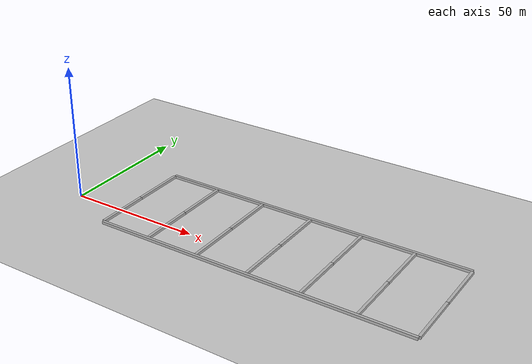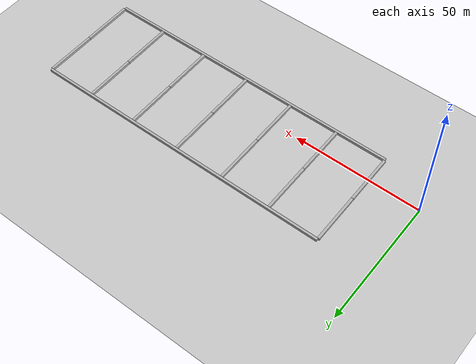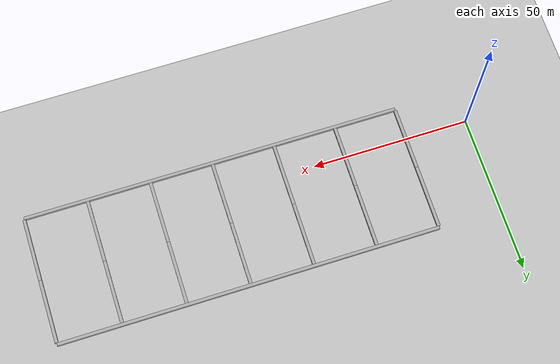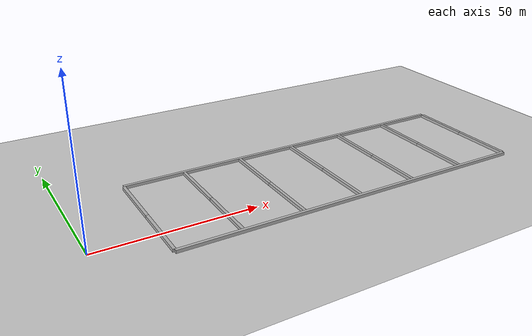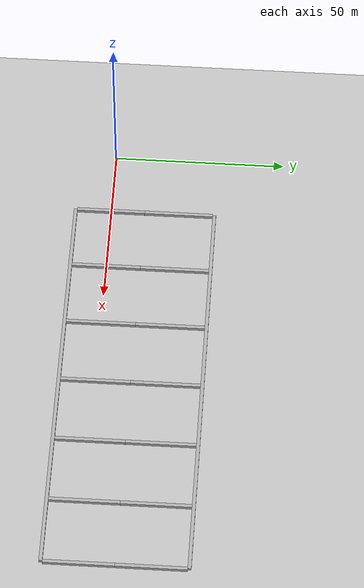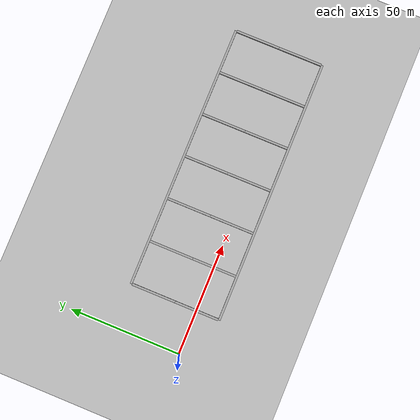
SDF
<sdf version="1.4">
 <world name="default">
  <include><uri>model://ground_plane</uri></include>
  <include><uri>model://sun</uri></include>
  <model name="box_right">
   <pose>80 -10.5 0.5 0 0 0</pose>
   <link name="link">
    <collision name="collision"><geometry><box><size>120 1 1</size></box></geometry></collision>
    <visual name="visual"><geometry><box><size>120 1 1</size></box></geometry></visual>
   </link>
  </model>
  <model name="box_left">
   <pose>80 30.5 0.5 0 0 0</pose>
   <link name="link">
    <collision name="collision"><geometry><box><size>120 1 1</size></box></geometry></collision>
    <visual name="visual"><geometry><box><size>120 1 1</size></box></geometry></visual>
   </link>
  </model>
  <model name="box_0_0">
   <pose>20 0 0.5 0 0 0</pose>
   <link name="link">
    <collision name="collision"><geometry><box><size>1 20 1</size></box></geometry></collision>
    <visual name="visual"><geometry><box><size>1 20 1</size></box></geometry></visual>
   </link>
  </model>
  <model name="box_1_0">
   <pose>40 0 0.5 0 0 0</pose>
   <link name="link">
    <collision name="collision"><geometry><box><size>1 20 1</size></box></geometry></collision>
    <visual name="visual"><geometry><box><size>1 20 1</size></box></geometry></visual>
   </link>
  </model>
  <model name="box_2_0">
   <pose>60 0 0.5 0 0 0</pose>
   <link name="link">
    <collision name="collision"><geometry><box><size>1 20 1</size></box></geometry></collision>
    <visual name="visual"><geometry><box><size>1 20 1</size></box></geometry></visual>
   </link>
  </model>
  <model name="box_3_0">
   <pose>80 0 0.5 0 0 0</pose>
   <link name="link">
    <collision name="collision"><geometry><box><size>1 20 1</size></box></geometry></collision>
    <visual name="visual"><geometry><box><size>1 20 1</size></box></geometry></visual>
   </link>
  </model>
  <model name="box_4_0">
   <pose>100 0 0.5 0 0 0</pose>
   <link name="link">
    <collision name="collision"><geometry><box><size>1 20 1</size></box></geometry></collision>
    <visual name="visual"><geometry><box><size>1 20 1</size></box></geometry></visual>
   </link>
  </model>
  <model name="box_5_0">
   <pose>120 0 0.5 0 0 0</pose>
   <link name="link">
    <collision name="collision"><geometry><box><size>1 20 1</size></box></geometry></collision>
    <visual name="visual"><geometry><box><size>1 20 1</size></box></geometry></visual>
   </link>
  </model>
  <model name="box_6_0">
   <pose>140 0 0.5 0 0 0</pose>
   <link name="link">
    <collision name="collision"><geometry><box><size>1 20 1</size></box></geometry></collision>
    <visual name="visual"><geometry><box><size>1 20 1</size></box></geometry></visual>
   </link>
  </model>
  <model name="box_0_1">
   <pose>20 20 0.5 0 0 0</pose>
   <link name="link">
    <collision name="collision"><geometry><box><size>1 20 1</size></box></geometry></collision>
    <visual name="visual"><geometry><box><size>1 20 1</size></box></geometry></visual>
   </link>
  </model>
  <model name="box_1_1">
   <pose>40 20 0.5 0 0 0</pose>
   <link name="link">
    <collision name="collision"><geometry><box><size>1 20 1</size></box></geometry></collision>
    <visual name="visual"><geometry><box><size>1 20 1</size></box></geometry></visual>
   </link>
  </model>
  <model name="box_2_1">
   <pose>60 20 0.5 0 0 0</pose>
   <link name="link">
    <collision name="collision"><geometry><box><size>1 20 1</size></box></geometry></collision>
    <visual name="visual"><geometry><box><size>1 20 1</size></box></geometry></visual>
   </link>
  </model>
  <model name="box_3_1">
   <pose>80 20 0.5 0 0 0</pose>
   <link name="link">
    <collision name="collision"><geometry><box><size>1 20 1</size></box></geometry></collision>
    <visual name="visual"><geometry><box><size>1 20 1</size></box></geometry></visual>
   </link>
  </model>
  <model name="box_4_1">
   <pose>100 20 0.5 0 0 0</pose>
   <link name="link">
    <collision name="collision"><geometry><box><size>1 20 1</size></box></geometry></collision>
    <visual name="visual"><geometry><box><size>1 20 1</size></box></geometry></visual>
   </link>
  </model>
  <model name="box_5_1">
   <pose>120 20 0.5 0 0 0</pose>
   <link name="link">
    <collision name="collision"><geometry><box><size>1 20 1</size></box></geometry></collision>
    <visual name="visual"><geometry><box><size>1 20 1</size></box></geometry></visual>
   </link>
  </model>
  <model name="box_6_1">
   <pose>140 20 0.5 0 0 0</pose>
   <link name="link">
    <collision name="collision"><geometry><box><size>1 20 1</size></box></geometry></collision>
    <visual name="visual"><geometry><box><size>1 20 1</size></box></geometry></visual>
   </link>
  </model>
 </world>
</sdf>
